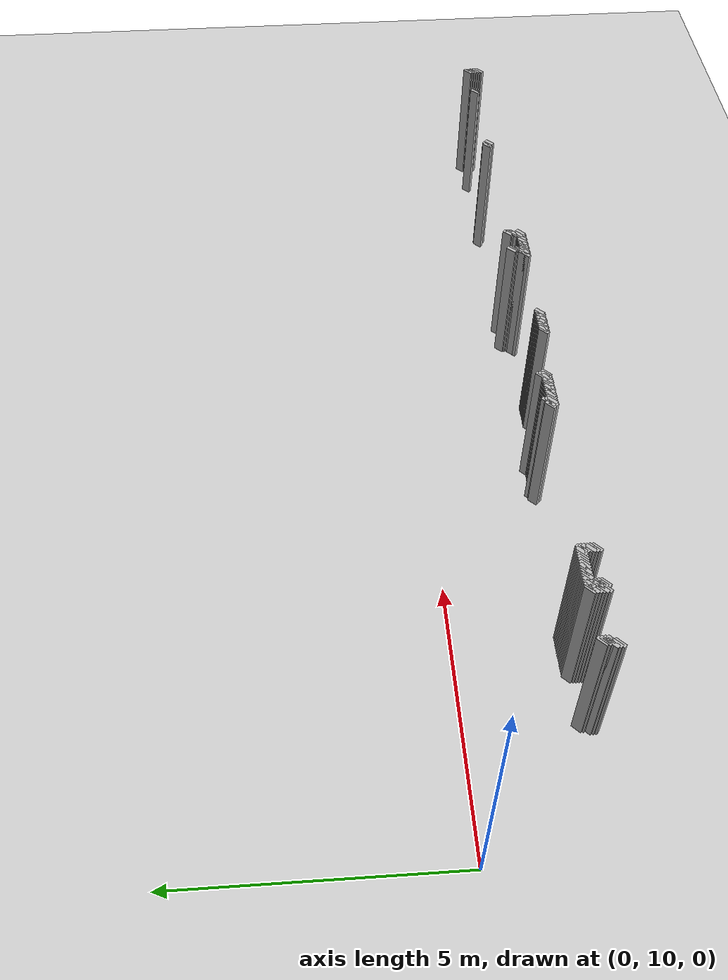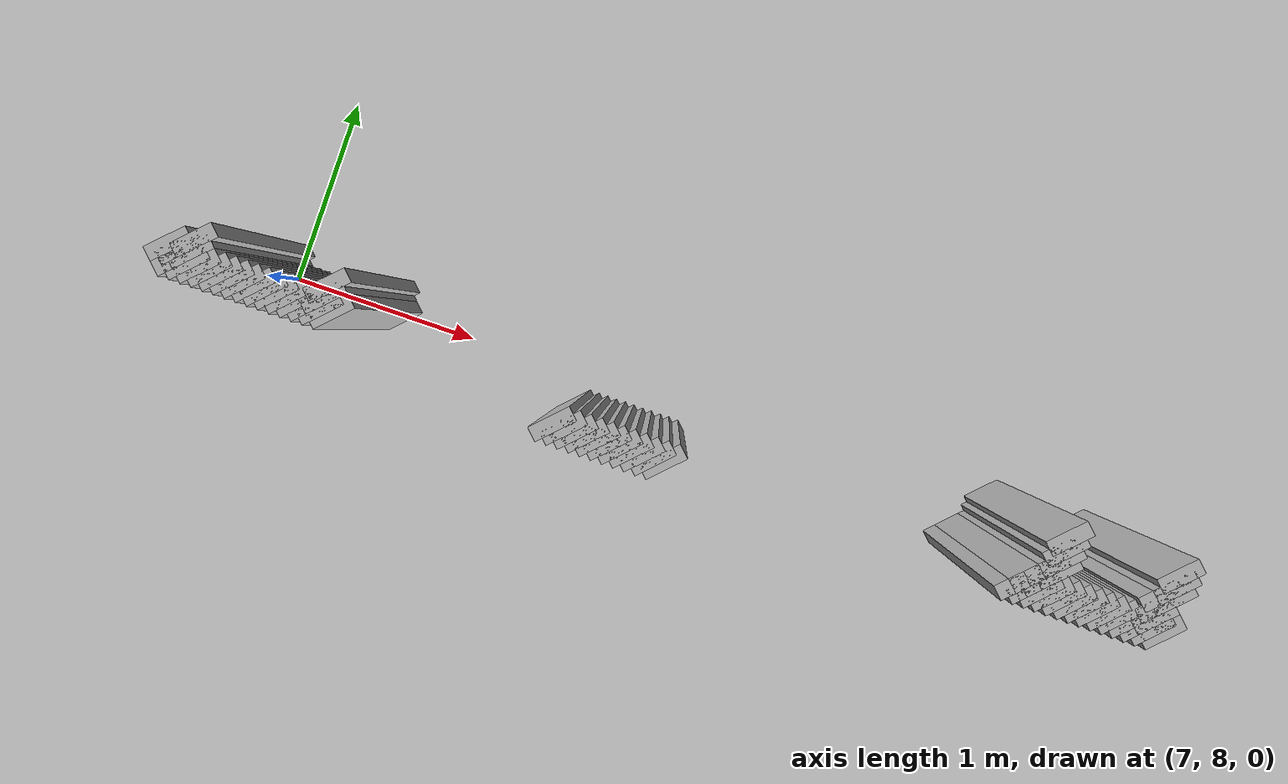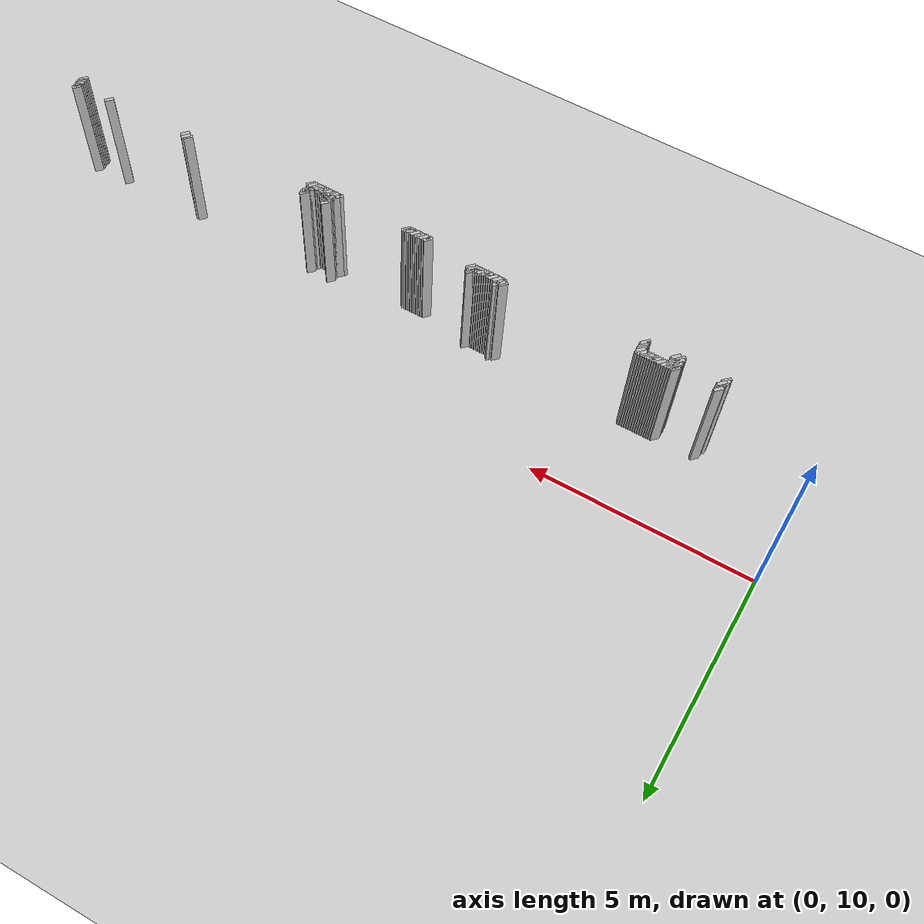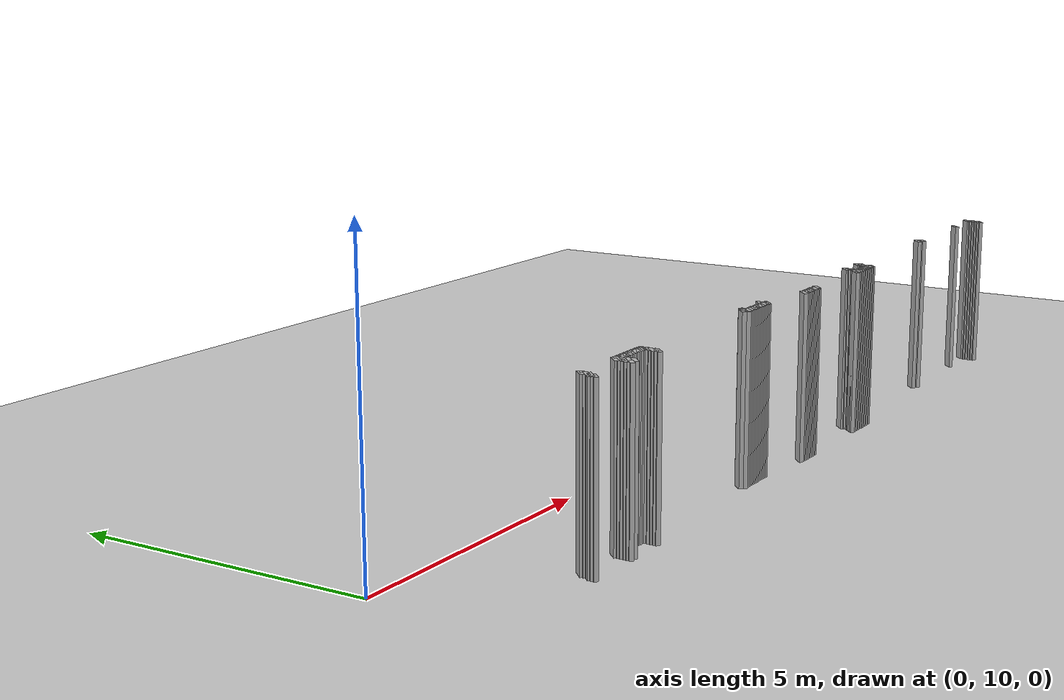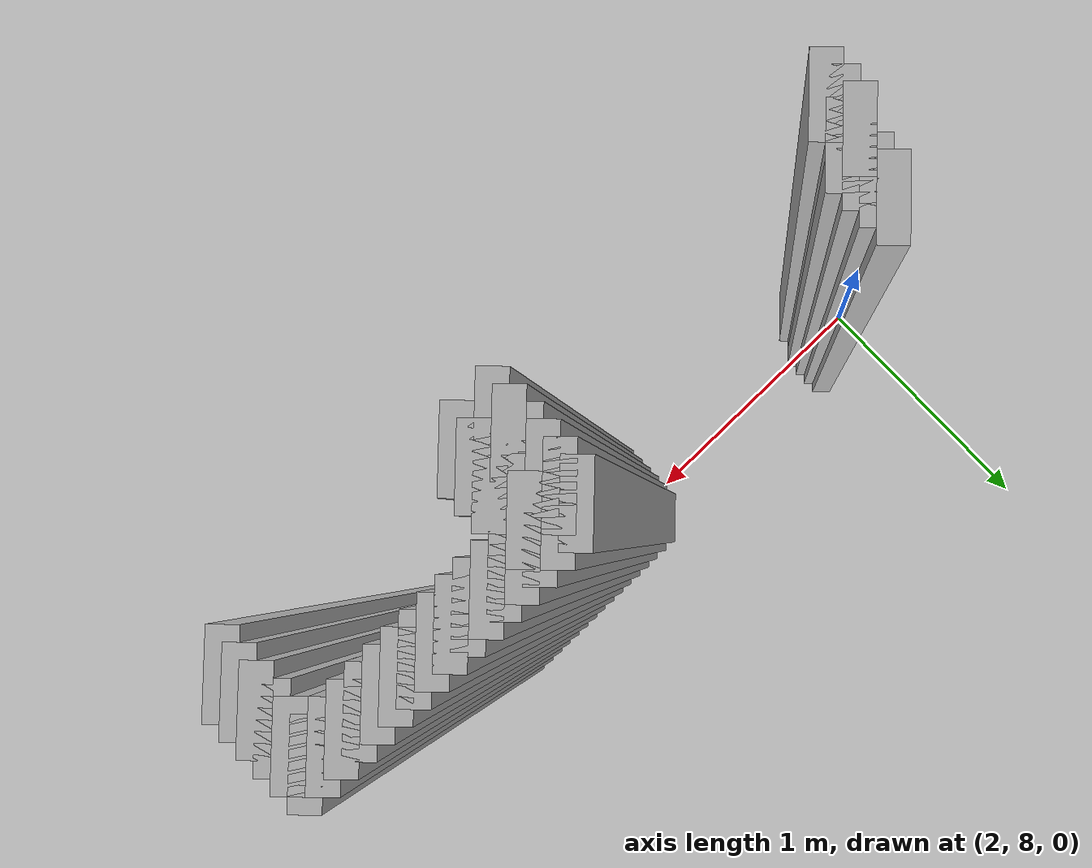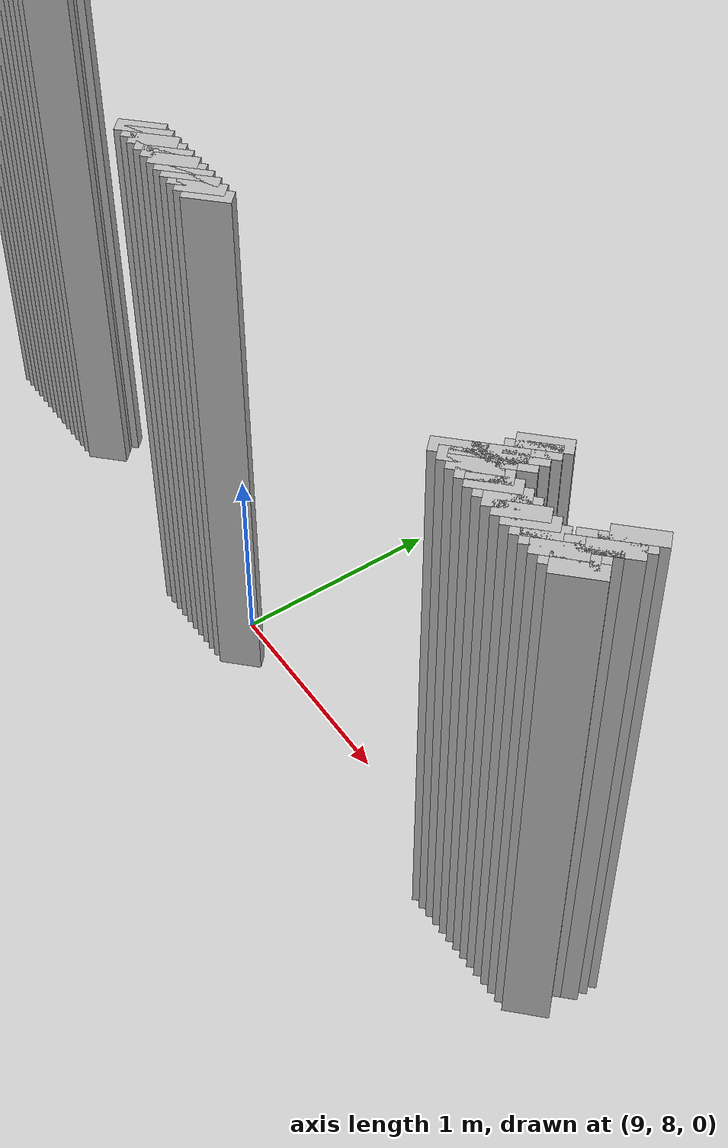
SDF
<sdf version="1.5">
 <world name="default">
  <include><uri>model://ground_plane</uri></include>
  <include><uri>model://sun</uri></include>
  <model name="grey_wall_2119">
   <static>1</static>
   <link name="link">
    <pose>17.05 8.15  1.4 0 0 -0.7853981633974838</pose>
    <collision name="collision">
     <geometry><box><size>0.07071067811865325 .2  2.8</size></box></geometry>
    </collision>
    <visual name="visual">
     <cast_shadows>0</cast_shadows>
     <geometry><box><size>0.07071067811865325 .2  2.8</size></box></geometry>
    </visual>
   </link>
  </model>
  <model name="grey_wall_2120">
   <static>1</static>
   <link name="link">
    <pose>2.2 8.1  1.4 0 0 -0.7853981633974572</pose>
    <collision name="collision">
     <geometry><box><size>0.07071067811865513 .2  2.8</size></box></geometry>
    </collision>
    <visual name="visual">
     <cast_shadows>0</cast_shadows>
     <geometry><box><size>0.07071067811865513 .2  2.8</size></box></geometry>
    </visual>
   </link>
  </model>
  <model name="grey_wall_2121">
   <static>1</static>
   <link name="link">
    <pose>3.1 8.1  1.4 0 0 -0.7853981633974572</pose>
    <collision name="collision">
     <geometry><box><size>0.07071067811865513 .2  2.8</size></box></geometry>
    </collision>
    <visual name="visual">
     <cast_shadows>0</cast_shadows>
     <geometry><box><size>0.07071067811865513 .2  2.8</size></box></geometry>
    </visual>
   </link>
  </model>
  <model name="grey_wall_2122">
   <static>1</static>
   <link name="link">
    <pose>3.1500000000000004 8.1  1.4 0 0 -0.7853981633974572</pose>
    <collision name="collision">
     <geometry><box><size>0.07071067811865513 .2  2.8</size></box></geometry>
    </collision>
    <visual name="visual">
     <cast_shadows>0</cast_shadows>
     <geometry><box><size>0.07071067811865513 .2  2.8</size></box></geometry>
    </visual>
   </link>
  </model>
  <model name="grey_wall_2123">
   <static>1</static>
   <link name="link">
    <pose>3.2 8.1  1.4 0 0 -0.7853981633974572</pose>
    <collision name="collision">
     <geometry><box><size>0.07071067811865513 .2  2.8</size></box></geometry>
    </collision>
    <visual name="visual">
     <cast_shadows>0</cast_shadows>
     <geometry><box><size>0.07071067811865513 .2  2.8</size></box></geometry>
    </visual>
   </link>
  </model>
  <model name="grey_wall_2124">
   <static>1</static>
   <link name="link">
    <pose>3.25 8.1  1.4 0 0 -0.7853981633974572</pose>
    <collision name="collision">
     <geometry><box><size>0.07071067811865513 .2  2.8</size></box></geometry>
    </collision>
    <visual name="visual">
     <cast_shadows>0</cast_shadows>
     <geometry><box><size>0.07071067811865513 .2  2.8</size></box></geometry>
    </visual>
   </link>
  </model>
  <model name="grey_wall_2125">
   <static>1</static>
   <link name="link">
    <pose>3.3000000000000003 8.1  1.4 0 0 -0.7853981633974572</pose>
    <collision name="collision">
     <geometry><box><size>0.07071067811865513 .2  2.8</size></box></geometry>
    </collision>
    <visual name="visual">
     <cast_shadows>0</cast_shadows>
     <geometry><box><size>0.07071067811865513 .2  2.8</size></box></geometry>
    </visual>
   </link>
  </model>
  <model name="grey_wall_2126">
   <static>1</static>
   <link name="link">
    <pose>3.35 8.1  1.4 0 0 -0.7853981633974572</pose>
    <collision name="collision">
     <geometry><box><size>0.07071067811865513 .2  2.8</size></box></geometry>
    </collision>
    <visual name="visual">
     <cast_shadows>0</cast_shadows>
     <geometry><box><size>0.07071067811865513 .2  2.8</size></box></geometry>
    </visual>
   </link>
  </model>
  <model name="grey_wall_2127">
   <static>1</static>
   <link name="link">
    <pose>3.4000000000000004 8.1  1.4 0 0 -0.7853981633974572</pose>
    <collision name="collision">
     <geometry><box><size>0.07071067811865513 .2  2.8</size></box></geometry>
    </collision>
    <visual name="visual">
     <cast_shadows>0</cast_shadows>
     <geometry><box><size>0.07071067811865513 .2  2.8</size></box></geometry>
    </visual>
   </link>
  </model>
  <model name="grey_wall_2128">
   <static>1</static>
   <link name="link">
    <pose>3.45 8.1  1.4 0 0 -0.7853981633974572</pose>
    <collision name="collision">
     <geometry><box><size>0.07071067811865513 .2  2.8</size></box></geometry>
    </collision>
    <visual name="visual">
     <cast_shadows>0</cast_shadows>
     <geometry><box><size>0.07071067811865513 .2  2.8</size></box></geometry>
    </visual>
   </link>
  </model>
  <model name="grey_wall_2129">
   <static>1</static>
   <link name="link">
    <pose>3.5 8.1  1.4 0 0 -0.7853981633974572</pose>
    <collision name="collision">
     <geometry><box><size>0.07071067811865513 .2  2.8</size></box></geometry>
    </collision>
    <visual name="visual">
     <cast_shadows>0</cast_shadows>
     <geometry><box><size>0.07071067811865513 .2  2.8</size></box></geometry>
    </visual>
   </link>
  </model>
  <model name="grey_wall_2130">
   <static>1</static>
   <link name="link">
    <pose>3.5500000000000003 8.1  1.4 0 0 -0.7853981633974572</pose>
    <collision name="collision">
     <geometry><box><size>0.07071067811865513 .2  2.8</size></box></geometry>
    </collision>
    <visual name="visual">
     <cast_shadows>0</cast_shadows>
     <geometry><box><size>0.07071067811865513 .2  2.8</size></box></geometry>
    </visual>
   </link>
  </model>
  <model name="grey_wall_2131">
   <static>1</static>
   <link name="link">
    <pose>3.6 8.1  1.4 0 0 -0.7853981633974572</pose>
    <collision name="collision">
     <geometry><box><size>0.07071067811865513 .2  2.8</size></box></geometry>
    </collision>
    <visual name="visual">
     <cast_shadows>0</cast_shadows>
     <geometry><box><size>0.07071067811865513 .2  2.8</size></box></geometry>
    </visual>
   </link>
  </model>
  <model name="grey_wall_2132">
   <static>1</static>
   <link name="link">
    <pose>3.6500000000000004 8.1  1.4 0 0 -0.7853981633974572</pose>
    <collision name="collision">
     <geometry><box><size>0.07071067811865513 .2  2.8</size></box></geometry>
    </collision>
    <visual name="visual">
     <cast_shadows>0</cast_shadows>
     <geometry><box><size>0.07071067811865513 .2  2.8</size></box></geometry>
    </visual>
   </link>
  </model>
  <model name="grey_wall_2133">
   <static>1</static>
   <link name="link">
    <pose>3.7 8.1  1.4 0 0 -0.7853981633974572</pose>
    <collision name="collision">
     <geometry><box><size>0.07071067811865513 .2  2.8</size></box></geometry>
    </collision>
    <visual name="visual">
     <cast_shadows>0</cast_shadows>
     <geometry><box><size>0.07071067811865513 .2  2.8</size></box></geometry>
    </visual>
   </link>
  </model>
  <model name="grey_wall_2134">
   <static>1</static>
   <link name="link">
    <pose>3.75 8.1  1.4 0 0 -0.7853981633974572</pose>
    <collision name="collision">
     <geometry><box><size>0.07071067811865513 .2  2.8</size></box></geometry>
    </collision>
    <visual name="visual">
     <cast_shadows>0</cast_shadows>
     <geometry><box><size>0.07071067811865513 .2  2.8</size></box></geometry>
    </visual>
   </link>
  </model>
  <model name="grey_wall_2135">
   <static>1</static>
   <link name="link">
    <pose>3.8000000000000003 8.1  1.4 0 0 -0.7853981633974572</pose>
    <collision name="collision">
     <geometry><box><size>0.07071067811865513 .2  2.8</size></box></geometry>
    </collision>
    <visual name="visual">
     <cast_shadows>0</cast_shadows>
     <geometry><box><size>0.07071067811865513 .2  2.8</size></box></geometry>
    </visual>
   </link>
  </model>
  <model name="grey_wall_2136">
   <static>1</static>
   <link name="link">
    <pose>3.85 8.1  1.4 0 0 -0.7853981633974572</pose>
    <collision name="collision">
     <geometry><box><size>0.07071067811865513 .2  2.8</size></box></geometry>
    </collision>
    <visual name="visual">
     <cast_shadows>0</cast_shadows>
     <geometry><box><size>0.07071067811865513 .2  2.8</size></box></geometry>
    </visual>
   </link>
  </model>
  <model name="grey_wall_2137">
   <static>1</static>
   <link name="link">
    <pose>6.95 8.1  1.4 0 0 -0.7853981633974483</pose>
    <collision name="collision">
     <geometry><box><size>0.07071067811865576 .2  2.8</size></box></geometry>
    </collision>
    <visual name="visual">
     <cast_shadows>0</cast_shadows>
     <geometry><box><size>0.07071067811865576 .2  2.8</size></box></geometry>
    </visual>
   </link>
  </model>
  <model name="grey_wall_2138">
   <static>1</static>
   <link name="link">
    <pose>7.550000000000001 8.1  1.4 0 0 -0.7853981633974483</pose>
    <collision name="collision">
     <geometry><box><size>0.07071067811865576 .2  2.8</size></box></geometry>
    </collision>
    <visual name="visual">
     <cast_shadows>0</cast_shadows>
     <geometry><box><size>0.07071067811865576 .2  2.8</size></box></geometry>
    </visual>
   </link>
  </model>
  <model name="grey_wall_2139">
   <static>1</static>
   <link name="link">
    <pose>10.9 8.1  1.4 0 0 -0.7853981633974483</pose>
    <collision name="collision">
     <geometry><box><size>0.07071067811865576 .2  2.8</size></box></geometry>
    </collision>
    <visual name="visual">
     <cast_shadows>0</cast_shadows>
     <geometry><box><size>0.07071067811865576 .2  2.8</size></box></geometry>
    </visual>
   </link>
  </model>
  <model name="grey_wall_2140">
   <static>1</static>
   <link name="link">
    <pose>11.4 8.1  1.4 0 0 -0.7853981633974483</pose>
    <collision name="collision">
     <geometry><box><size>0.07071067811865576 .2  2.8</size></box></geometry>
    </collision>
    <visual name="visual">
     <cast_shadows>0</cast_shadows>
     <geometry><box><size>0.07071067811865576 .2  2.8</size></box></geometry>
    </visual>
   </link>
  </model>
  <model name="grey_wall_2141">
   <static>1</static>
   <link name="link">
    <pose>14.25 8.1  1.4 0 0 -0.7853981633974483</pose>
    <collision name="collision">
     <geometry><box><size>0.07071067811865576 .2  2.8</size></box></geometry>
    </collision>
    <visual name="visual">
     <cast_shadows>0</cast_shadows>
     <geometry><box><size>0.07071067811865576 .2  2.8</size></box></geometry>
    </visual>
   </link>
  </model>
  <model name="grey_wall_2142">
   <static>1</static>
   <link name="link">
    <pose>14.3 8.1  1.4 0 0 -0.7853981633974483</pose>
    <collision name="collision">
     <geometry><box><size>0.07071067811865576 .2  2.8</size></box></geometry>
    </collision>
    <visual name="visual">
     <cast_shadows>0</cast_shadows>
     <geometry><box><size>0.07071067811865576 .2  2.8</size></box></geometry>
    </visual>
   </link>
  </model>
  <model name="grey_wall_2143">
   <static>1</static>
   <link name="link">
    <pose>16.25 8.1  1.4 0 0 -0.7853981633974838</pose>
    <collision name="collision">
     <geometry><box><size>0.07071067811865325 .2  2.8</size></box></geometry>
    </collision>
    <visual name="visual">
     <cast_shadows>0</cast_shadows>
     <geometry><box><size>0.07071067811865325 .2  2.8</size></box></geometry>
    </visual>
   </link>
  </model>
  <model name="grey_wall_2144">
   <static>1</static>
   <link name="link">
    <pose>17.05 8.1  1.4 0 0 -0.7853981633974838</pose>
    <collision name="collision">
     <geometry><box><size>0.07071067811865325 .2  2.8</size></box></geometry>
    </collision>
    <visual name="visual">
     <cast_shadows>0</cast_shadows>
     <geometry><box><size>0.07071067811865325 .2  2.8</size></box></geometry>
    </visual>
   </link>
  </model>
  <model name="grey_wall_2145">
   <static>1</static>
   <link name="link">
    <pose>2.2 8.05  1.4 0 0 -0.7853981633974572</pose>
    <collision name="collision">
     <geometry><box><size>0.07071067811865513 .2  2.8</size></box></geometry>
    </collision>
    <visual name="visual">
     <cast_shadows>0</cast_shadows>
     <geometry><box><size>0.07071067811865513 .2  2.8</size></box></geometry>
    </visual>
   </link>
  </model>
  <model name="grey_wall_2146">
   <static>1</static>
   <link name="link">
    <pose>3.1 8.05  1.4 0 0 -0.7853981633974572</pose>
    <collision name="collision">
     <geometry><box><size>0.07071067811865513 .2  2.8</size></box></geometry>
    </collision>
    <visual name="visual">
     <cast_shadows>0</cast_shadows>
     <geometry><box><size>0.07071067811865513 .2  2.8</size></box></geometry>
    </visual>
   </link>
  </model>
  <model name="grey_wall_2147">
   <static>1</static>
   <link name="link">
    <pose>3.2 8.05  1.4 0 0 -0.7853981633974572</pose>
    <collision name="collision">
     <geometry><box><size>0.07071067811865513 .2  2.8</size></box></geometry>
    </collision>
    <visual name="visual">
     <cast_shadows>0</cast_shadows>
     <geometry><box><size>0.07071067811865513 .2  2.8</size></box></geometry>
    </visual>
   </link>
  </model>
  <model name="grey_wall_2148">
   <static>1</static>
   <link name="link">
    <pose>3.85 8.05  1.4 0 0 -0.7853981633974572</pose>
    <collision name="collision">
     <geometry><box><size>0.07071067811865513 .2  2.8</size></box></geometry>
    </collision>
    <visual name="visual">
     <cast_shadows>0</cast_shadows>
     <geometry><box><size>0.07071067811865513 .2  2.8</size></box></geometry>
    </visual>
   </link>
  </model>
  <model name="grey_wall_2149">
   <static>1</static>
   <link name="link">
    <pose>6.8500000000000005 8.05  1.4 0 0 -0.7853981633974483</pose>
    <collision name="collision">
     <geometry><box><size>0.07071067811865576 .2  2.8</size></box></geometry>
    </collision>
    <visual name="visual">
     <cast_shadows>0</cast_shadows>
     <geometry><box><size>0.07071067811865576 .2  2.8</size></box></geometry>
    </visual>
   </link>
  </model>
  <model name="grey_wall_2150">
   <static>1</static>
   <link name="link">
    <pose>6.9 8.05  1.4 0 0 -0.7853981633974483</pose>
    <collision name="collision">
     <geometry><box><size>0.07071067811865576 .2  2.8</size></box></geometry>
    </collision>
    <visual name="visual">
     <cast_shadows>0</cast_shadows>
     <geometry><box><size>0.07071067811865576 .2  2.8</size></box></geometry>
    </visual>
   </link>
  </model>
  <model name="grey_wall_2151">
   <static>1</static>
   <link name="link">
    <pose>6.95 8.05  1.4 0 0 -0.7853981633974483</pose>
    <collision name="collision">
     <geometry><box><size>0.07071067811865576 .2  2.8</size></box></geometry>
    </collision>
    <visual name="visual">
     <cast_shadows>0</cast_shadows>
     <geometry><box><size>0.07071067811865576 .2  2.8</size></box></geometry>
    </visual>
   </link>
  </model>
  <model name="grey_wall_2152">
   <static>1</static>
   <link name="link">
    <pose>7.550000000000001 8.05  1.4 0 0 -0.7853981633974483</pose>
    <collision name="collision">
     <geometry><box><size>0.07071067811865576 .2  2.8</size></box></geometry>
    </collision>
    <visual name="visual">
     <cast_shadows>0</cast_shadows>
     <geometry><box><size>0.07071067811865576 .2  2.8</size></box></geometry>
    </visual>
   </link>
  </model>
  <model name="grey_wall_2153">
   <static>1</static>
   <link name="link">
    <pose>10.9 8.05  1.4 0 0 -0.7853981633974483</pose>
    <collision name="collision">
     <geometry><box><size>0.07071067811865576 .2  2.8</size></box></geometry>
    </collision>
    <visual name="visual">
     <cast_shadows>0</cast_shadows>
     <geometry><box><size>0.07071067811865576 .2  2.8</size></box></geometry>
    </visual>
   </link>
  </model>
  <model name="grey_wall_2154">
   <static>1</static>
   <link name="link">
    <pose>11.4 8.05  1.4 0 0 -0.7853981633974483</pose>
    <collision name="collision">
     <geometry><box><size>0.07071067811865576 .2  2.8</size></box></geometry>
    </collision>
    <visual name="visual">
     <cast_shadows>0</cast_shadows>
     <geometry><box><size>0.07071067811865576 .2  2.8</size></box></geometry>
    </visual>
   </link>
  </model>
  <model name="grey_wall_2155">
   <static>1</static>
   <link name="link">
    <pose>14.350000000000001 8.05  1.4 0 0 -0.7853981633974483</pose>
    <collision name="collision">
     <geometry><box><size>0.07071067811865576 .2  2.8</size></box></geometry>
    </collision>
    <visual name="visual">
     <cast_shadows>0</cast_shadows>
     <geometry><box><size>0.07071067811865576 .2  2.8</size></box></geometry>
    </visual>
   </link>
  </model>
  <model name="grey_wall_2156">
   <static>1</static>
   <link name="link">
    <pose>17.05 8.05  1.4 0 0 -0.7853981633974838</pose>
    <collision name="collision">
     <geometry><box><size>0.07071067811865325 .2  2.8</size></box></geometry>
    </collision>
    <visual name="visual">
     <cast_shadows>0</cast_shadows>
     <geometry><box><size>0.07071067811865325 .2  2.8</size></box></geometry>
    </visual>
   </link>
  </model>
  <model name="grey_wall_2157">
   <static>1</static>
   <link name="link">
    <pose>2.2 8.0  1.4 0 0 -0.7853981633974572</pose>
    <collision name="collision">
     <geometry><box><size>0.07071067811865513 .2  2.8</size></box></geometry>
    </collision>
    <visual name="visual">
     <cast_shadows>0</cast_shadows>
     <geometry><box><size>0.07071067811865513 .2  2.8</size></box></geometry>
    </visual>
   </link>
  </model>
  <model name="grey_wall_2158">
   <static>1</static>
   <link name="link">
    <pose>3.1 8.0  1.4 0 0 -0.7853981633974572</pose>
    <collision name="collision">
     <geometry><box><size>0.07071067811865513 .2  2.8</size></box></geometry>
    </collision>
    <visual name="visual">
     <cast_shadows>0</cast_shadows>
     <geometry><box><size>0.07071067811865513 .2  2.8</size></box></geometry>
    </visual>
   </link>
  </model>
  <model name="grey_wall_2159">
   <static>1</static>
   <link name="link">
    <pose>3.2 8.0  1.4 0 0 -0.7853981633974572</pose>
    <collision name="collision">
     <geometry><box><size>0.07071067811865513 .2  2.8</size></box></geometry>
    </collision>
    <visual name="visual">
     <cast_shadows>0</cast_shadows>
     <geometry><box><size>0.07071067811865513 .2  2.8</size></box></geometry>
    </visual>
   </link>
  </model>
  <model name="grey_wall_2160">
   <static>1</static>
   <link name="link">
    <pose>3.85 8.0  1.4 0 0 -0.7853981633974572</pose>
    <collision name="collision">
     <geometry><box><size>0.07071067811865513 .2  2.8</size></box></geometry>
    </collision>
    <visual name="visual">
     <cast_shadows>0</cast_shadows>
     <geometry><box><size>0.07071067811865513 .2  2.8</size></box></geometry>
    </visual>
   </link>
  </model>
  <model name="grey_wall_2161">
   <static>1</static>
   <link name="link">
    <pose>6.9 8.0  1.4 0 0 -0.7853981633974483</pose>
    <collision name="collision">
     <geometry><box><size>0.07071067811865576 .2  2.8</size></box></geometry>
    </collision>
    <visual name="visual">
     <cast_shadows>0</cast_shadows>
     <geometry><box><size>0.07071067811865576 .2  2.8</size></box></geometry>
    </visual>
   </link>
  </model>
  <model name="grey_wall_2162">
   <static>1</static>
   <link name="link">
    <pose>6.95 8.0  1.4 0 0 -0.7853981633974483</pose>
    <collision name="collision">
     <geometry><box><size>0.07071067811865576 .2  2.8</size></box></geometry>
    </collision>
    <visual name="visual">
     <cast_shadows>0</cast_shadows>
     <geometry><box><size>0.07071067811865576 .2  2.8</size></box></geometry>
    </visual>
   </link>
  </model>
  <model name="grey_wall_2163">
   <static>1</static>
   <link name="link">
    <pose>7.0 8.0  1.4 0 0 -0.7853981633974483</pose>
    <collision name="collision">
     <geometry><box><size>0.07071067811865576 .2  2.8</size></box></geometry>
    </collision>
    <visual name="visual">
     <cast_shadows>0</cast_shadows>
     <geometry><box><size>0.07071067811865576 .2  2.8</size></box></geometry>
    </visual>
   </link>
  </model>
  <model name="grey_wall_2164">
   <static>1</static>
   <link name="link">
    <pose>7.050000000000001 8.0  1.4 0 0 -0.7853981633974483</pose>
    <collision name="collision">
     <geometry><box><size>0.07071067811865576 .2  2.8</size></box></geometry>
    </collision>
    <visual name="visual">
     <cast_shadows>0</cast_shadows>
     <geometry><box><size>0.07071067811865576 .2  2.8</size></box></geometry>
    </visual>
   </link>
  </model>
  <model name="grey_wall_2165">
   <static>1</static>
   <link name="link">
    <pose>7.1000000000000005 8.0  1.4 0 0 -0.7853981633974483</pose>
    <collision name="collision">
     <geometry><box><size>0.07071067811865576 .2  2.8</size></box></geometry>
    </collision>
    <visual name="visual">
     <cast_shadows>0</cast_shadows>
     <geometry><box><size>0.07071067811865576 .2  2.8</size></box></geometry>
    </visual>
   </link>
  </model>
  <model name="grey_wall_2166">
   <static>1</static>
   <link name="link">
    <pose>7.15 8.0  1.4 0 0 -0.7853981633974483</pose>
    <collision name="collision">
     <geometry><box><size>0.07071067811865576 .2  2.8</size></box></geometry>
    </collision>
    <visual name="visual">
     <cast_shadows>0</cast_shadows>
     <geometry><box><size>0.07071067811865576 .2  2.8</size></box></geometry>
    </visual>
   </link>
  </model>
  <model name="grey_wall_2167">
   <static>1</static>
   <link name="link">
    <pose>7.2 8.0  1.4 0 0 -0.7853981633974483</pose>
    <collision name="collision">
     <geometry><box><size>0.07071067811865576 .2  2.8</size></box></geometry>
    </collision>
    <visual name="visual">
     <cast_shadows>0</cast_shadows>
     <geometry><box><size>0.07071067811865576 .2  2.8</size></box></geometry>
    </visual>
   </link>
  </model>
  <model name="grey_wall_2168">
   <static>1</static>
   <link name="link">
    <pose>7.25 8.0  1.4 0 0 -0.7853981633974483</pose>
    <collision name="collision">
     <geometry><box><size>0.07071067811865576 .2  2.8</size></box></geometry>
    </collision>
    <visual name="visual">
     <cast_shadows>0</cast_shadows>
     <geometry><box><size>0.07071067811865576 .2  2.8</size></box></geometry>
    </visual>
   </link>
  </model>
  <model name="grey_wall_2169">
   <static>1</static>
   <link name="link">
    <pose>7.300000000000001 8.0  1.4 0 0 -0.7853981633974483</pose>
    <collision name="collision">
     <geometry><box><size>0.07071067811865576 .2  2.8</size></box></geometry>
    </collision>
    <visual name="visual">
     <cast_shadows>0</cast_shadows>
     <geometry><box><size>0.07071067811865576 .2  2.8</size></box></geometry>
    </visual>
   </link>
  </model>
  <model name="grey_wall_2170">
   <static>1</static>
   <link name="link">
    <pose>7.3500000000000005 8.0  1.4 0 0 -0.7853981633974483</pose>
    <collision name="collision">
     <geometry><box><size>0.07071067811865576 .2  2.8</size></box></geometry>
    </collision>
    <visual name="visual">
     <cast_shadows>0</cast_shadows>
     <geometry><box><size>0.07071067811865576 .2  2.8</size></box></geometry>
    </visual>
   </link>
  </model>
  <model name="grey_wall_2171">
   <static>1</static>
   <link name="link">
    <pose>7.4 8.0  1.4 0 0 -0.7853981633974483</pose>
    <collision name="collision">
     <geometry><box><size>0.07071067811865576 .2  2.8</size></box></geometry>
    </collision>
    <visual name="visual">
     <cast_shadows>0</cast_shadows>
     <geometry><box><size>0.07071067811865576 .2  2.8</size></box></geometry>
    </visual>
   </link>
  </model>
  <model name="grey_wall_2172">
   <static>1</static>
   <link name="link">
    <pose>7.45 8.0  1.4 0 0 -0.7853981633974483</pose>
    <collision name="collision">
     <geometry><box><size>0.07071067811865576 .2  2.8</size></box></geometry>
    </collision>
    <visual name="visual">
     <cast_shadows>0</cast_shadows>
     <geometry><box><size>0.07071067811865576 .2  2.8</size></box></geometry>
    </visual>
   </link>
  </model>
  <model name="grey_wall_2173">
   <static>1</static>
   <link name="link">
    <pose>7.5 8.0  1.4 0 0 -0.7853981633974483</pose>
    <collision name="collision">
     <geometry><box><size>0.07071067811865576 .2  2.8</size></box></geometry>
    </collision>
    <visual name="visual">
     <cast_shadows>0</cast_shadows>
     <geometry><box><size>0.07071067811865576 .2  2.8</size></box></geometry>
    </visual>
   </link>
  </model>
  <model name="grey_wall_2174">
   <static>1</static>
   <link name="link">
    <pose>7.550000000000001 8.0  1.4 0 0 -0.7853981633974483</pose>
    <collision name="collision">
     <geometry><box><size>0.07071067811865576 .2  2.8</size></box></geometry>
    </collision>
    <visual name="visual">
     <cast_shadows>0</cast_shadows>
     <geometry><box><size>0.07071067811865576 .2  2.8</size></box></geometry>
    </visual>
   </link>
  </model>
  <model name="grey_wall_2175">
   <static>1</static>
   <link name="link">
    <pose>7.6000000000000005 8.0  1.4 0 0 -0.7853981633974483</pose>
    <collision name="collision">
     <geometry><box><size>0.07071067811865576 .2  2.8</size></box></geometry>
    </collision>
    <visual name="visual">
     <cast_shadows>0</cast_shadows>
     <geometry><box><size>0.07071067811865576 .2  2.8</size></box></geometry>
    </visual>
   </link>
  </model>
  <model name="grey_wall_2176">
   <static>1</static>
   <link name="link">
    <pose>10.9 8.0  1.4 0 0 -0.7853981633974483</pose>
    <collision name="collision">
     <geometry><box><size>0.07071067811865576 .2  2.8</size></box></geometry>
    </collision>
    <visual name="visual">
     <cast_shadows>0</cast_shadows>
     <geometry><box><size>0.07071067811865576 .2  2.8</size></box></geometry>
    </visual>
   </link>
  </model>
  <model name="grey_wall_2177">
   <static>1</static>
   <link name="link">
    <pose>11.350000000000001 8.0  1.4 0 0 -0.7853981633974483</pose>
    <collision name="collision">
     <geometry><box><size>0.07071067811865576 .2  2.8</size></box></geometry>
    </collision>
    <visual name="visual">
     <cast_shadows>0</cast_shadows>
     <geometry><box><size>0.07071067811865576 .2  2.8</size></box></geometry>
    </visual>
   </link>
  </model>
  <model name="grey_wall_2178">
   <static>1</static>
   <link name="link">
    <pose>11.4 8.0  1.4 0 0 -0.7853981633974483</pose>
    <collision name="collision">
     <geometry><box><size>0.07071067811865576 .2  2.8</size></box></geometry>
    </collision>
    <visual name="visual">
     <cast_shadows>0</cast_shadows>
     <geometry><box><size>0.07071067811865576 .2  2.8</size></box></geometry>
    </visual>
   </link>
  </model>
  <model name="grey_wall_2179">
   <static>1</static>
   <link name="link">
    <pose>17.05 8.0  1.4 0 0 -0.7853981633974838</pose>
    <collision name="collision">
     <geometry><box><size>0.07071067811865325 .2  2.8</size></box></geometry>
    </collision>
    <visual name="visual">
     <cast_shadows>0</cast_shadows>
     <geometry><box><size>0.07071067811865325 .2  2.8</size></box></geometry>
    </visual>
   </link>
  </model>
  <model name="grey_wall_2180">
   <static>1</static>
   <link name="link">
    <pose>2.15 7.95  1.4 0 0 -0.7853981633974572</pose>
    <collision name="collision">
     <geometry><box><size>0.07071067811865513 .2  2.8</size></box></geometry>
    </collision>
    <visual name="visual">
     <cast_shadows>0</cast_shadows>
     <geometry><box><size>0.07071067811865513 .2  2.8</size></box></geometry>
    </visual>
   </link>
  </model>
  <model name="grey_wall_2181">
   <static>1</static>
   <link name="link">
    <pose>2.2 7.95  1.4 0 0 -0.7853981633974572</pose>
    <collision name="collision">
     <geometry><box><size>0.07071067811865513 .2  2.8</size></box></geometry>
    </collision>
    <visual name="visual">
     <cast_shadows>0</cast_shadows>
     <geometry><box><size>0.07071067811865513 .2  2.8</size></box></geometry>
    </visual>
   </link>
  </model>
  <model name="grey_wall_2182">
   <static>1</static>
   <link name="link">
    <pose>3.1 7.95  1.4 0 0 -0.7853981633974572</pose>
    <collision name="collision">
     <geometry><box><size>0.07071067811865513 .2  2.8</size></box></geometry>
    </collision>
    <visual name="visual">
     <cast_shadows>0</cast_shadows>
     <geometry><box><size>0.07071067811865513 .2  2.8</size></box></geometry>
    </visual>
   </link>
  </model>
  <model name="grey_wall_2183">
   <static>1</static>
   <link name="link">
    <pose>3.2 7.95  1.4 0 0 -0.7853981633974572</pose>
    <collision name="collision">
     <geometry><box><size>0.07071067811865513 .2  2.8</size></box></geometry>
    </collision>
    <visual name="visual">
     <cast_shadows>0</cast_shadows>
     <geometry><box><size>0.07071067811865513 .2  2.8</size></box></geometry>
    </visual>
   </link>
  </model>
  <model name="grey_wall_2184">
   <static>1</static>
   <link name="link">
    <pose>3.85 7.95  1.4 0 0 -0.7853981633974572</pose>
    <collision name="collision">
     <geometry><box><size>0.07071067811865513 .2  2.8</size></box></geometry>
    </collision>
    <visual name="visual">
     <cast_shadows>0</cast_shadows>
     <geometry><box><size>0.07071067811865513 .2  2.8</size></box></geometry>
    </visual>
   </link>
  </model>
  <model name="grey_wall_2185">
   <static>1</static>
   <link name="link">
    <pose>10.850000000000001 7.95  1.4 0 0 -0.7853981633974483</pose>
    <collision name="collision">
     <geometry><box><size>0.07071067811865576 .2  2.8</size></box></geometry>
    </collision>
    <visual name="visual">
     <cast_shadows>0</cast_shadows>
     <geometry><box><size>0.07071067811865576 .2  2.8</size></box></geometry>
    </visual>
   </link>
  </model>
  <model name="grey_wall_2186">
   <static>1</static>
   <link name="link">
    <pose>10.9 7.95  1.4 0 0 -0.7853981633974483</pose>
    <collision name="collision">
     <geometry><box><size>0.07071067811865576 .2  2.8</size></box></geometry>
    </collision>
    <visual name="visual">
     <cast_shadows>0</cast_shadows>
     <geometry><box><size>0.07071067811865576 .2  2.8</size></box></geometry>
    </visual>
   </link>
  </model>
  <model name="grey_wall_2187">
   <static>1</static>
   <link name="link">
    <pose>11.350000000000001 7.95  1.4 0 0 -0.7853981633974483</pose>
    <collision name="collision">
     <geometry><box><size>0.07071067811865576 .2  2.8</size></box></geometry>
    </collision>
    <visual name="visual">
     <cast_shadows>0</cast_shadows>
     <geometry><box><size>0.07071067811865576 .2  2.8</size></box></geometry>
    </visual>
   </link>
  </model>
  <model name="grey_wall_2188">
   <static>1</static>
   <link name="link">
    <pose>17.05 7.95  1.4 0 0 -0.7853981633974838</pose>
    <collision name="collision">
     <geometry><box><size>0.07071067811865325 .2  2.8</size></box></geometry>
    </collision>
    <visual name="visual">
     <cast_shadows>0</cast_shadows>
     <geometry><box><size>0.07071067811865325 .2  2.8</size></box></geometry>
    </visual>
   </link>
  </model>
  <model name="grey_wall_2189">
   <static>1</static>
   <link name="link">
    <pose>2.15 7.9  1.4 0 0 -0.7853981633974572</pose>
    <collision name="collision">
     <geometry><box><size>0.07071067811865513 .2  2.8</size></box></geometry>
    </collision>
    <visual name="visual">
     <cast_shadows>0</cast_shadows>
     <geometry><box><size>0.07071067811865513 .2  2.8</size></box></geometry>
    </visual>
   </link>
  </model>
  <model name="grey_wall_2190">
   <static>1</static>
   <link name="link">
    <pose>3.1 7.9  1.4 0 0 -0.7853981633974572</pose>
    <collision name="collision">
     <geometry><box><size>0.07071067811865513 .2  2.8</size></box></geometry>
    </collision>
    <visual name="visual">
     <cast_shadows>0</cast_shadows>
     <geometry><box><size>0.07071067811865513 .2  2.8</size></box></geometry>
    </visual>
   </link>
  </model>
  <model name="grey_wall_2191">
   <static>1</static>
   <link name="link">
    <pose>3.2 7.9  1.4 0 0 -0.7853981633974572</pose>
    <collision name="collision">
     <geometry><box><size>0.07071067811865513 .2  2.8</size></box></geometry>
    </collision>
    <visual name="visual">
     <cast_shadows>0</cast_shadows>
     <geometry><box><size>0.07071067811865513 .2  2.8</size></box></geometry>
    </visual>
   </link>
  </model>
  <model name="grey_wall_2192">
   <static>1</static>
   <link name="link">
    <pose>3.85 7.9  1.4 0 0 -0.7853981633974572</pose>
    <collision name="collision">
     <geometry><box><size>0.07071067811865513 .2  2.8</size></box></geometry>
    </collision>
    <visual name="visual">
     <cast_shadows>0</cast_shadows>
     <geometry><box><size>0.07071067811865513 .2  2.8</size></box></geometry>
    </visual>
   </link>
  </model>
  <model name="grey_wall_2193">
   <static>1</static>
   <link name="link">
    <pose>10.8 7.9  1.4 0 0 -0.7853981633974483</pose>
    <collision name="collision">
     <geometry><box><size>0.07071067811865576 .2  2.8</size></box></geometry>
    </collision>
    <visual name="visual">
     <cast_shadows>0</cast_shadows>
     <geometry><box><size>0.07071067811865576 .2  2.8</size></box></geometry>
    </visual>
   </link>
  </model>
  <model name="grey_wall_2194">
   <static>1</static>
   <link name="link">
    <pose>10.850000000000001 7.9  1.4 0 0 -0.7853981633974483</pose>
    <collision name="collision">
     <geometry><box><size>0.07071067811865576 .2  2.8</size></box></geometry>
    </collision>
    <visual name="visual">
     <cast_shadows>0</cast_shadows>
     <geometry><box><size>0.07071067811865576 .2  2.8</size></box></geometry>
    </visual>
   </link>
  </model>
  <model name="grey_wall_2195">
   <static>1</static>
   <link name="link">
    <pose>11.350000000000001 7.9  1.4 0 0 -0.7853981633974483</pose>
    <collision name="collision">
     <geometry><box><size>0.07071067811865576 .2  2.8</size></box></geometry>
    </collision>
    <visual name="visual">
     <cast_shadows>0</cast_shadows>
     <geometry><box><size>0.07071067811865576 .2  2.8</size></box></geometry>
    </visual>
   </link>
  </model>
  <model name="grey_wall_2196">
   <static>1</static>
   <link name="link">
    <pose>17.05 7.9  1.4 0 0 -0.7853981633974838</pose>
    <collision name="collision">
     <geometry><box><size>0.07071067811865325 .2  2.8</size></box></geometry>
    </collision>
    <visual name="visual">
     <cast_shadows>0</cast_shadows>
     <geometry><box><size>0.07071067811865325 .2  2.8</size></box></geometry>
    </visual>
   </link>
  </model>
  <model name="grey_wall_2197">
   <static>1</static>
   <link name="link">
    <pose>2.15 7.8500000000000005  1.4 0 0 -0.7853981633974572</pose>
    <collision name="collision">
     <geometry><box><size>0.07071067811865513 .2  2.8</size></box></geometry>
    </collision>
    <visual name="visual">
     <cast_shadows>0</cast_shadows>
     <geometry><box><size>0.07071067811865513 .2  2.8</size></box></geometry>
    </visual>
   </link>
  </model>
  <model name="grey_wall_2198">
   <static>1</static>
   <link name="link">
    <pose>3.1 7.8500000000000005  1.4 0 0 -0.7853981633974572</pose>
    <collision name="collision">
     <geometry><box><size>0.07071067811865513 .2  2.8</size></box></geometry>
    </collision>
    <visual name="visual">
     <cast_shadows>0</cast_shadows>
     <geometry><box><size>0.07071067811865513 .2  2.8</size></box></geometry>
    </visual>
   </link>
  </model>
  <model name="grey_wall_2199">
   <static>1</static>
   <link name="link">
    <pose>3.2 7.8500000000000005  1.4 0 0 -0.7853981633974572</pose>
    <collision name="collision">
     <geometry><box><size>0.07071067811865513 .2  2.8</size></box></geometry>
    </collision>
    <visual name="visual">
     <cast_shadows>0</cast_shadows>
     <geometry><box><size>0.07071067811865513 .2  2.8</size></box></geometry>
    </visual>
   </link>
  </model>
  <model name="grey_wall_2200">
   <static>1</static>
   <link name="link">
    <pose>3.85 7.8500000000000005  1.4 0 0 -0.7853981633974572</pose>
    <collision name="collision">
     <geometry><box><size>0.07071067811865513 .2  2.8</size></box></geometry>
    </collision>
    <visual name="visual">
     <cast_shadows>0</cast_shadows>
     <geometry><box><size>0.07071067811865513 .2  2.8</size></box></geometry>
    </visual>
   </link>
  </model>
  <model name="grey_wall_2201">
   <static>1</static>
   <link name="link">
    <pose>8.65 7.8500000000000005  1.4 0 0 -0.7853981633974483</pose>
    <collision name="collision">
     <geometry><box><size>0.07071067811865576 .2  2.8</size></box></geometry>
    </collision>
    <visual name="visual">
     <cast_shadows>0</cast_shadows>
     <geometry><box><size>0.07071067811865576 .2  2.8</size></box></geometry>
    </visual>
   </link>
  </model>
  <model name="grey_wall_2202">
   <static>1</static>
   <link name="link">
    <pose>8.700000000000001 7.8500000000000005  1.4 0 0 -0.7853981633974483</pose>
    <collision name="collision">
     <geometry><box><size>0.07071067811865576 .2  2.8</size></box></geometry>
    </collision>
    <visual name="visual">
     <cast_shadows>0</cast_shadows>
     <geometry><box><size>0.07071067811865576 .2  2.8</size></box></geometry>
    </visual>
   </link>
  </model>
  <model name="grey_wall_2203">
   <static>1</static>
   <link name="link">
    <pose>8.75 7.8500000000000005  1.4 0 0 -0.7853981633974483</pose>
    <collision name="collision">
     <geometry><box><size>0.07071067811865576 .2  2.8</size></box></geometry>
    </collision>
    <visual name="visual">
     <cast_shadows>0</cast_shadows>
     <geometry><box><size>0.07071067811865576 .2  2.8</size></box></geometry>
    </visual>
   </link>
  </model>
  <model name="grey_wall_2204">
   <static>1</static>
   <link name="link">
    <pose>8.8 7.8500000000000005  1.4 0 0 -0.7853981633974483</pose>
    <collision name="collision">
     <geometry><box><size>0.07071067811865576 .2  2.8</size></box></geometry>
    </collision>
    <visual name="visual">
     <cast_shadows>0</cast_shadows>
     <geometry><box><size>0.07071067811865576 .2  2.8</size></box></geometry>
    </visual>
   </link>
  </model>
  <model name="grey_wall_2205">
   <static>1</static>
   <link name="link">
    <pose>8.85 7.8500000000000005  1.4 0 0 -0.7853981633974483</pose>
    <collision name="collision">
     <geometry><box><size>0.07071067811865576 .2  2.8</size></box></geometry>
    </collision>
    <visual name="visual">
     <cast_shadows>0</cast_shadows>
     <geometry><box><size>0.07071067811865576 .2  2.8</size></box></geometry>
    </visual>
   </link>
  </model>
  <model name="grey_wall_2206">
   <static>1</static>
   <link name="link">
    <pose>8.9 7.8500000000000005  1.4 0 0 -0.7853981633974483</pose>
    <collision name="collision">
     <geometry><box><size>0.07071067811865576 .2  2.8</size></box></geometry>
    </collision>
    <visual name="visual">
     <cast_shadows>0</cast_shadows>
     <geometry><box><size>0.07071067811865576 .2  2.8</size></box></geometry>
    </visual>
   </link>
  </model>
  <model name="grey_wall_2207">
   <static>1</static>
   <link name="link">
    <pose>8.950000000000001 7.8500000000000005  1.4 0 0 -0.7853981633974483</pose>
    <collision name="collision">
     <geometry><box><size>0.07071067811865576 .2  2.8</size></box></geometry>
    </collision>
    <visual name="visual">
     <cast_shadows>0</cast_shadows>
     <geometry><box><size>0.07071067811865576 .2  2.8</size></box></geometry>
    </visual>
   </link>
  </model>
  <model name="grey_wall_2208">
   <static>1</static>
   <link name="link">
    <pose>9.0 7.8500000000000005  1.4 0 0 -0.7853981633974483</pose>
    <collision name="collision">
     <geometry><box><size>0.07071067811865576 .2  2.8</size></box></geometry>
    </collision>
    <visual name="visual">
     <cast_shadows>0</cast_shadows>
     <geometry><box><size>0.07071067811865576 .2  2.8</size></box></geometry>
    </visual>
   </link>
  </model>
  <model name="grey_wall_2209">
   <static>1</static>
   <link name="link">
    <pose>9.05 7.8500000000000005  1.4 0 0 -0.7853981633974483</pose>
    <collision name="collision">
     <geometry><box><size>0.07071067811865576 .2  2.8</size></box></geometry>
    </collision>
    <visual name="visual">
     <cast_shadows>0</cast_shadows>
     <geometry><box><size>0.07071067811865576 .2  2.8</size></box></geometry>
    </visual>
   </link>
  </model>
  <model name="grey_wall_2210">
   <static>1</static>
   <link name="link">
    <pose>9.1 7.8500000000000005  1.4 0 0 -0.7853981633974483</pose>
    <collision name="collision">
     <geometry><box><size>0.07071067811865576 .2  2.8</size></box></geometry>
    </collision>
    <visual name="visual">
     <cast_shadows>0</cast_shadows>
     <geometry><box><size>0.07071067811865576 .2  2.8</size></box></geometry>
    </visual>
   </link>
  </model>
  <model name="grey_wall_2211">
   <static>1</static>
   <link name="link">
    <pose>9.15 7.8500000000000005  1.4 0 0 -0.7853981633974483</pose>
    <collision name="collision">
     <geometry><box><size>0.07071067811865576 .2  2.8</size></box></geometry>
    </collision>
    <visual name="visual">
     <cast_shadows>0</cast_shadows>
     <geometry><box><size>0.07071067811865576 .2  2.8</size></box></geometry>
    </visual>
   </link>
  </model>
  <model name="grey_wall_2212">
   <static>1</static>
   <link name="link">
    <pose>10.75 7.8500000000000005  1.4 0 0 -0.7853981633974483</pose>
    <collision name="collision">
     <geometry><box><size>0.07071067811865576 .2  2.8</size></box></geometry>
    </collision>
    <visual name="visual">
     <cast_shadows>0</cast_shadows>
     <geometry><box><size>0.07071067811865576 .2  2.8</size></box></geometry>
    </visual>
   </link>
  </model>
  <model name="grey_wall_2213">
   <static>1</static>
   <link name="link">
    <pose>10.8 7.8500000000000005  1.4 0 0 -0.7853981633974483</pose>
    <collision name="collision">
     <geometry><box><size>0.07071067811865576 .2  2.8</size></box></geometry>
    </collision>
    <visual name="visual">
     <cast_shadows>0</cast_shadows>
     <geometry><box><size>0.07071067811865576 .2  2.8</size></box></geometry>
    </visual>
   </link>
  </model>
  <model name="grey_wall_2214">
   <static>1</static>
   <link name="link">
    <pose>10.850000000000001 7.8500000000000005  1.4 0 0 -0.7853981633974483</pose>
    <collision name="collision">
     <geometry><box><size>0.07071067811865576 .2  2.8</size></box></geometry>
    </collision>
    <visual name="visual">
     <cast_shadows>0</cast_shadows>
     <geometry><box><size>0.07071067811865576 .2  2.8</size></box></geometry>
    </visual>
   </link>
  </model>
  <model name="grey_wall_2215">
   <static>1</static>
   <link name="link">
    <pose>10.9 7.8500000000000005  1.4 0 0 -0.7853981633974483</pose>
    <collision name="collision">
     <geometry><box><size>0.07071067811865576 .2  2.8</size></box></geometry>
    </collision>
    <visual name="visual">
     <cast_shadows>0</cast_shadows>
     <geometry><box><size>0.07071067811865576 .2  2.8</size></box></geometry>
    </visual>
   </link>
  </model>
  <model name="grey_wall_2216">
   <static>1</static>
   <link name="link">
    <pose>10.950000000000001 7.8500000000000005  1.4 0 0 -0.7853981633974483</pose>
    <collision name="collision">
     <geometry><box><size>0.07071067811865576 .2  2.8</size></box></geometry>
    </collision>
    <visual name="visual">
     <cast_shadows>0</cast_shadows>
     <geometry><box><size>0.07071067811865576 .2  2.8</size></box></geometry>
    </visual>
   </link>
  </model>
  <model name="grey_wall_2217">
   <static>1</static>
   <link name="link">
    <pose>11.0 7.8500000000000005  1.4 0 0 -0.7853981633974483</pose>
    <collision name="collision">
     <geometry><box><size>0.07071067811865576 .2  2.8</size></box></geometry>
    </collision>
    <visual name="visual">
     <cast_shadows>0</cast_shadows>
     <geometry><box><size>0.07071067811865576 .2  2.8</size></box></geometry>
    </visual>
   </link>
  </model>
  <model name="grey_wall_2218">
   <static>1</static>
   <link name="link">
    <pose>11.05 7.8500000000000005  1.4 0 0 -0.7853981633974483</pose>
    <collision name="collision">
     <geometry><box><size>0.07071067811865576 .2  2.8</size></box></geometry>
    </collision>
    <visual name="visual">
     <cast_shadows>0</cast_shadows>
     <geometry><box><size>0.07071067811865576 .2  2.8</size></box></geometry>
    </visual>
   </link>
  </model>
  <model name="grey_wall_2219">
   <static>1</static>
   <link name="link">
    <pose>11.100000000000001 7.8500000000000005  1.4 0 0 -0.7853981633974483</pose>
    <collision name="collision">
     <geometry><box><size>0.07071067811865576 .2  2.8</size></box></geometry>
    </collision>
    <visual name="visual">
     <cast_shadows>0</cast_shadows>
     <geometry><box><size>0.07071067811865576 .2  2.8</size></box></geometry>
    </visual>
   </link>
  </model>
  <model name="grey_wall_2220">
   <static>1</static>
   <link name="link">
    <pose>11.15 7.8500000000000005  1.4 0 0 -0.7853981633974483</pose>
    <collision name="collision">
     <geometry><box><size>0.07071067811865576 .2  2.8</size></box></geometry>
    </collision>
    <visual name="visual">
     <cast_shadows>0</cast_shadows>
     <geometry><box><size>0.07071067811865576 .2  2.8</size></box></geometry>
    </visual>
   </link>
  </model>
  <model name="grey_wall_2221">
   <static>1</static>
   <link name="link">
    <pose>11.200000000000001 7.8500000000000005  1.4 0 0 -0.7853981633974483</pose>
    <collision name="collision">
     <geometry><box><size>0.07071067811865576 .2  2.8</size></box></geometry>
    </collision>
    <visual name="visual">
     <cast_shadows>0</cast_shadows>
     <geometry><box><size>0.07071067811865576 .2  2.8</size></box></geometry>
    </visual>
   </link>
  </model>
  <model name="grey_wall_2222">
   <static>1</static>
   <link name="link">
    <pose>11.25 7.8500000000000005  1.4 0 0 -0.7853981633974483</pose>
    <collision name="collision">
     <geometry><box><size>0.07071067811865576 .2  2.8</size></box></geometry>
    </collision>
    <visual name="visual">
     <cast_shadows>0</cast_shadows>
     <geometry><box><size>0.07071067811865576 .2  2.8</size></box></geometry>
    </visual>
   </link>
  </model>
  <model name="grey_wall_2223">
   <static>1</static>
   <link name="link">
    <pose>11.3 7.8500000000000005  1.4 0 0 -0.7853981633974483</pose>
    <collision name="collision">
     <geometry><box><size>0.07071067811865576 .2  2.8</size></box></geometry>
    </collision>
    <visual name="visual">
     <cast_shadows>0</cast_shadows>
     <geometry><box><size>0.07071067811865576 .2  2.8</size></box></geometry>
    </visual>
   </link>
  </model>
  <model name="grey_wall_2224">
   <static>1</static>
   <link name="link">
    <pose>11.350000000000001 7.8500000000000005  1.4 0 0 -0.7853981633974483</pose>
    <collision name="collision">
     <geometry><box><size>0.07071067811865576 .2  2.8</size></box></geometry>
    </collision>
    <visual name="visual">
     <cast_shadows>0</cast_shadows>
     <geometry><box><size>0.07071067811865576 .2  2.8</size></box></geometry>
    </visual>
   </link>
  </model>
  <model name="grey_wall_2225">
   <static>1</static>
   <link name="link">
    <pose>11.4 7.8500000000000005  1.4 0 0 -0.7853981633974483</pose>
    <collision name="collision">
     <geometry><box><size>0.07071067811865576 .2  2.8</size></box></geometry>
    </collision>
    <visual name="visual">
     <cast_shadows>0</cast_shadows>
     <geometry><box><size>0.07071067811865576 .2  2.8</size></box></geometry>
    </visual>
   </link>
  </model>
 </world>
</sdf>
